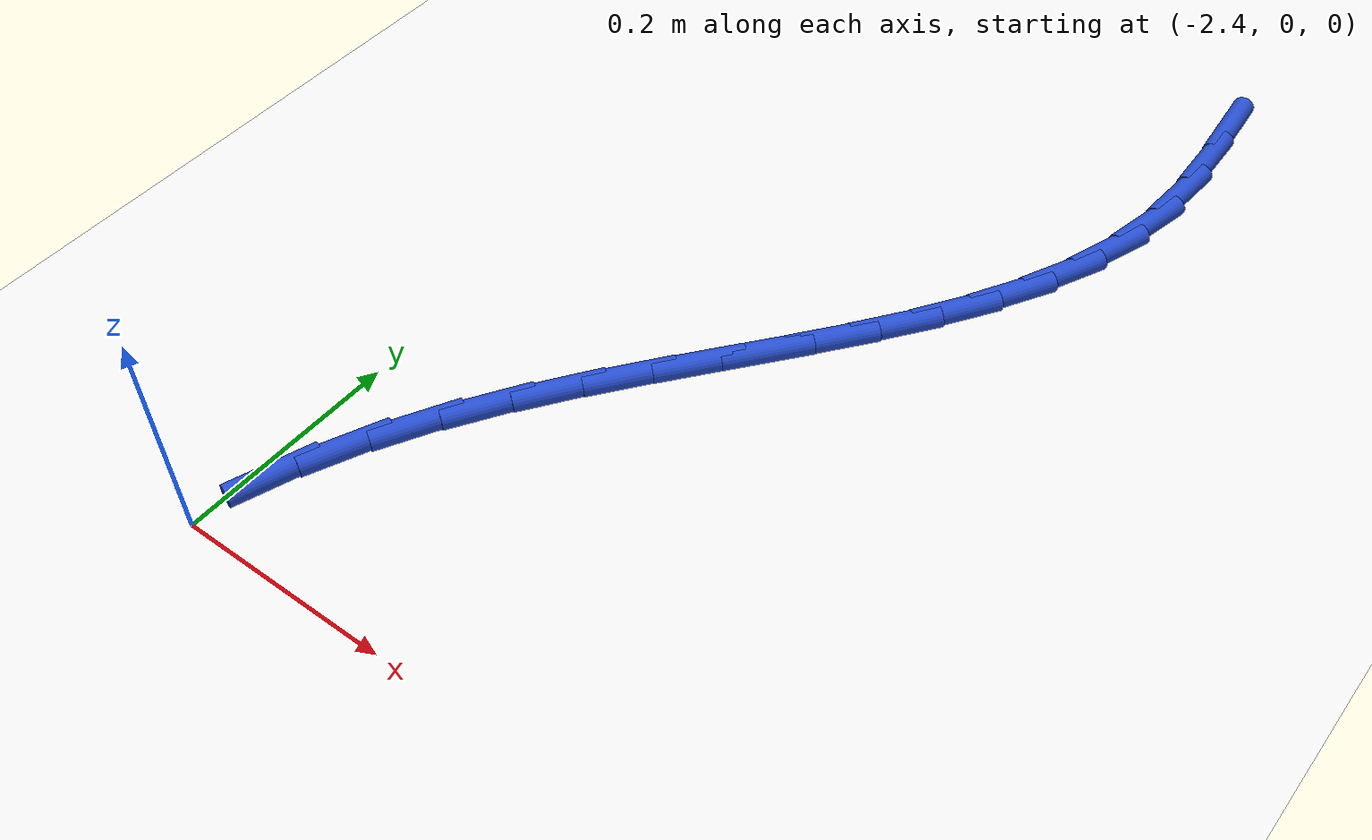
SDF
<sdf version="1.6">
 <world name="default">
  <model name="ground_plane">
   <static>1</static>
   <link name="link">
    <collision name="collision">
     <geometry><plane><normal>0 0 1</normal><size>100 100</size></plane></geometry>
     <surface><friction><ode><mu>100</mu><mu2>50</mu2></ode></friction></surface>
    </collision>
    <visual name="visual">
     <cast_shadows>0</cast_shadows>
     <geometry><plane><normal>0 0 1</normal><size>100 100</size></plane></geometry>
     <material>
      <script><uri>file://media/materials/scripts/gazebo.material</uri><name>Gazebo/WhiteGlow</name></script>
     </material>
    </visual>
   </link>
  </model>
  <model name="line">
   <link name="link_53">
    <pose>-1.9692981615954812 0.8951217403416268 0.01 0 1.57 -1.483250908545958</pose>
    <collision name="collision">
     <geometry><cylinder><radius>0.01</radius><length>0.08</length></cylinder></geometry>
    </collision>
    <visual name="visual">
     <material>
      <script><name>Gazebo/Blue</name><uri>file://media/materials/scripts/gazebo.material</uri></script>
     </material>
     <geometry><cylinder><radius>0.01</radius><length>0.08</length></cylinder></geometry>
    </visual>
   </link>
   <link name="link_54">
    <pose>-1.9643603891789354 0.8388634989315444 0.01 0 1.57 -1.5392364514164134</pose>
    <collision name="collision">
     <geometry><cylinder><radius>0.01</radius><length>0.08</length></cylinder></geometry>
    </collision>
    <visual name="visual">
     <material>
      <script><name>Gazebo/Blue</name><uri>file://media/materials/scripts/gazebo.material</uri></script>
     </material>
     <geometry><cylinder><radius>0.01</radius><length>0.08</length></cylinder></geometry>
    </visual>
   </link>
   <link name="link_55">
    <pose>-1.9626232287632783 0.7838384519574751 0.01 0 1.57 1.487653254144628</pose>
    <collision name="collision">
     <geometry><cylinder><radius>0.01</radius><length>0.08</length></cylinder></geometry>
    </collision>
    <visual name="visual">
     <material>
      <script><name>Gazebo/Blue</name><uri>file://media/materials/scripts/gazebo.material</uri></script>
     </material>
     <geometry><cylinder><radius>0.01</radius><length>0.08</length></cylinder></geometry>
    </visual>
   </link>
   <link name="link_56">
    <pose>-1.9670364825727251 0.7308805841617209 0.01 0 1.57 1.3481107005879835</pose>
    <collision name="collision">
     <geometry><cylinder><radius>0.01</radius><length>0.08</length></cylinder></geometry>
    </collision>
    <visual name="visual">
     <material>
      <script><name>Gazebo/Blue</name><uri>file://media/materials/scripts/gazebo.material</uri></script>
     </material>
     <geometry><cylinder><radius>0.01</radius><length>0.08</length></cylinder></geometry>
    </visual>
   </link>
   <link name="link_57">
    <pose>-1.9785147561654568 0.6801906857565853 0.01 0 1.57 1.222075824554182</pose>
    <collision name="collision">
     <geometry><cylinder><radius>0.01</radius><length>0.08</length></cylinder></geometry>
    </collision>
    <visual name="visual">
     <material>
      <script><name>Gazebo/Blue</name><uri>file://media/materials/scripts/gazebo.material</uri></script>
     </material>
     <geometry><cylinder><radius>0.01</radius><length>0.08</length></cylinder></geometry>
    </visual>
   </link>
   <link name="link_58">
    <pose>-1.9962426521378058 0.631431304910939 0.01 0 1.57 1.11539981759588</pose>
    <collision name="collision">
     <geometry><cylinder><radius>0.01</radius><length>0.08</length></cylinder></geometry>
    </collision>
    <visual name="visual">
     <material>
      <script><name>Gazebo/Blue</name><uri>file://media/materials/scripts/gazebo.material</uri></script>
     </material>
     <geometry><cylinder><radius>0.01</radius><length>0.08</length></cylinder></geometry>
    </visual>
   </link>
   <link name="link_59">
    <pose>-2.0193497184015405 0.5842478610681083 0.01 0 1.57 1.0297606252783384</pose>
    <collision name="collision">
     <geometry><cylinder><radius>0.01</radius><length>0.08</length></cylinder></geometry>
    </collision>
    <visual name="visual">
     <material>
      <script><name>Gazebo/Blue</name><uri>file://media/materials/scripts/gazebo.material</uri></script>
     </material>
     <geometry><cylinder><radius>0.01</radius><length>0.08</length></cylinder></geometry>
    </visual>
   </link>
   <link name="link_60">
    <pose>-2.0469655028684293 0.5382857736714214 0.01 0 1.57 0.9647388783125529</pose>
    <collision name="collision">
     <geometry><cylinder><radius>0.01</radius><length>0.08</length></cylinder></geometry>
    </collision>
    <visual name="visual">
     <material>
      <script><name>Gazebo/Blue</name><uri>file://media/materials/scripts/gazebo.material</uri></script>
     </material>
     <geometry><cylinder><radius>0.01</radius><length>0.08</length></cylinder></geometry>
    </visual>
   </link>
   <link name="link_61">
    <pose>-2.078219553450241 0.49319046216420487 0.01 0 1.57 0.918956873097289</pose>
    <collision name="collision">
     <geometry><cylinder><radius>0.01</radius><length>0.08</length></cylinder></geometry>
    </collision>
    <visual name="visual">
     <material>
      <script><name>Gazebo/Blue</name><uri>file://media/materials/scripts/gazebo.material</uri></script>
     </material>
     <geometry><cylinder><radius>0.01</radius><length>0.08</length></cylinder></geometry>
    </visual>
   </link>
   <link name="link_62">
    <pose>-2.1122414180587428 0.4486073459897865 0.01 0 1.57 0.8908774530167706</pose>
    <collision name="collision">
     <geometry><cylinder><radius>0.01</radius><length>0.08</length></cylinder></geometry>
    </collision>
    <visual name="visual">
     <material>
      <script><name>Gazebo/Blue</name><uri>file://media/materials/scripts/gazebo.material</uri></script>
     </material>
     <geometry><cylinder><radius>0.01</radius><length>0.08</length></cylinder></geometry>
    </visual>
   </link>
   <link name="link_63">
    <pose>-2.1481606446057038 0.4041818445914933 0.01 0 1.57 0.8792306963401972</pose>
    <collision name="collision">
     <geometry><cylinder><radius>0.01</radius><length>0.08</length></cylinder></geometry>
    </collision>
    <visual name="visual">
     <material>
      <script><name>Gazebo/Blue</name><uri>file://media/materials/scripts/gazebo.material</uri></script>
     </material>
     <geometry><cylinder><radius>0.01</radius><length>0.08</length></cylinder></geometry>
    </visual>
   </link>
   <link name="link_64">
    <pose>-2.185106781002893 0.3595593774126532 0.01 0 1.57 0.8831862889840897</pose>
    <collision name="collision">
     <geometry><cylinder><radius>0.01</radius><length>0.08</length></cylinder></geometry>
    </collision>
    <visual name="visual">
     <material>
      <script><name>Gazebo/Blue</name><uri>file://media/materials/scripts/gazebo.material</uri></script>
     </material>
     <geometry><cylinder><radius>0.01</radius><length>0.08</length></cylinder></geometry>
    </visual>
   </link>
   <link name="link_65">
    <pose>-2.222209375162077 0.314385363896593 0.01 0 1.57 0.9023793598844363</pose>
    <collision name="collision">
     <geometry><cylinder><radius>0.01</radius><length>0.08</length></cylinder></geometry>
    </collision>
    <visual name="visual">
     <material>
      <script><name>Gazebo/Blue</name><uri>file://media/materials/scripts/gazebo.material</uri></script>
     </material>
     <geometry><cylinder><radius>0.01</radius><length>0.08</length></cylinder></geometry>
    </visual>
   </link>
   <link name="link_66">
    <pose>-2.258597974995025 0.26830522348663977 0.01 0 1.57 0.9368461888215276</pose>
    <collision name="collision">
     <geometry><cylinder><radius>0.01</radius><length>0.08</length></cylinder></geometry>
    </collision>
    <visual name="visual">
     <material>
      <script><name>Gazebo/Blue</name><uri>file://media/materials/scripts/gazebo.material</uri></script>
     </material>
     <geometry><cylinder><radius>0.01</radius><length>0.08</length></cylinder></geometry>
    </visual>
   </link>
   <link name="link_67">
    <pose>-2.2934021284135064 0.22096437562612165 0.01 0 1.57 0.9868799111405122</pose>
    <collision name="collision">
     <geometry><cylinder><radius>0.01</radius><length>0.08</length></cylinder></geometry>
    </collision>
    <visual name="visual">
     <material>
      <script><name>Gazebo/Blue</name><uri>file://media/materials/scripts/gazebo.material</uri></script>
     </material>
     <geometry><cylinder><radius>0.01</radius><length>0.08</length></cylinder></geometry>
    </visual>
   </link>
   <link name="link_68">
    <pose>-2.3257513833292895 0.17200823975836516 0.01 0 1.57 1.0527858718921739</pose>
    <collision name="collision">
     <geometry><cylinder><radius>0.01</radius><length>0.08</length></cylinder></geometry>
    </collision>
    <visual name="visual">
     <material>
      <script><name>Gazebo/Blue</name><uri>file://media/materials/scripts/gazebo.material</uri></script>
     </material>
     <geometry><cylinder><radius>0.01</radius><length>0.08</length></cylinder></geometry>
    </visual>
   </link>
   <link name="link_69">
    <pose>-2.35477528765414 0.12108223532669841 0.01 0 1.57 1.1334828373053283</pose>
    <collision name="collision">
     <geometry><cylinder><radius>0.01</radius><length>0.08</length></cylinder></geometry>
    </collision>
    <visual name="visual">
     <material>
      <script><name>Gazebo/Blue</name><uri>file://media/materials/scripts/gazebo.material</uri></script>
     </material>
     <geometry><cylinder><radius>0.01</radius><length>0.08</length></cylinder></geometry>
    </visual>
   </link>
   <link name="link_70">
    <pose>-2.3796496394620337 0.06787537657227873 0.01 0 1.57 1.2173153509362624</pose>
    <collision name="collision">
     <geometry><cylinder><radius>0.01</radius><length>0.08</length></cylinder></geometry>
    </collision>
    <visual name="visual">
     <material>
      <script><name>Gazebo/Blue</name><uri>file://media/materials/scripts/gazebo.material</uri></script>
     </material>
     <geometry><cylinder><radius>0.01</radius><length>0.08</length></cylinder></geometry>
    </visual>
   </link>
  </model>
 </world>
</sdf>
